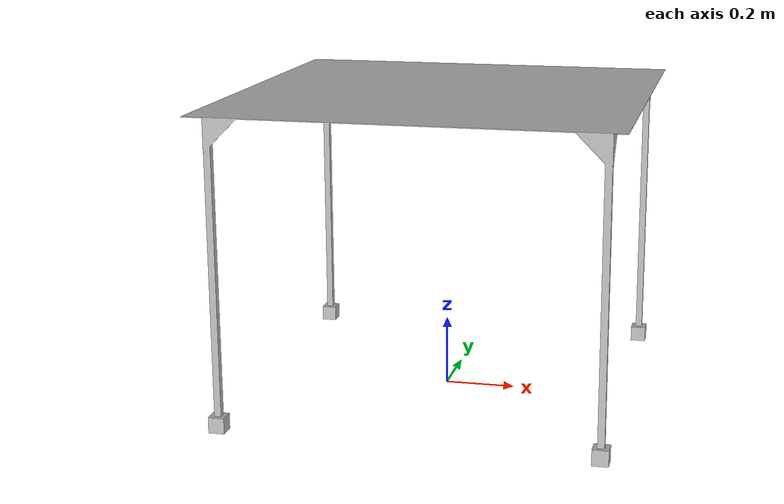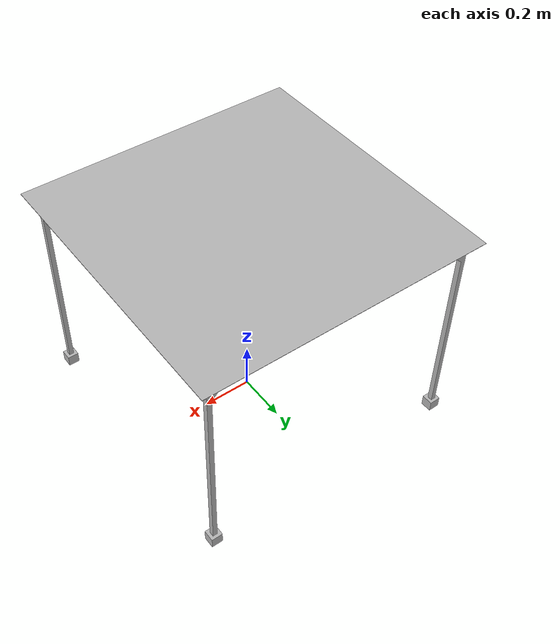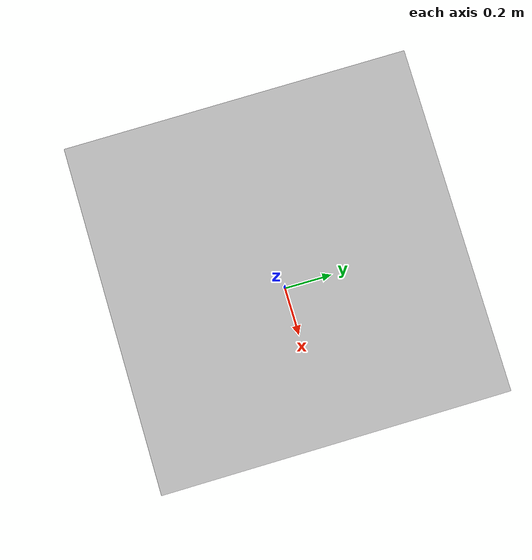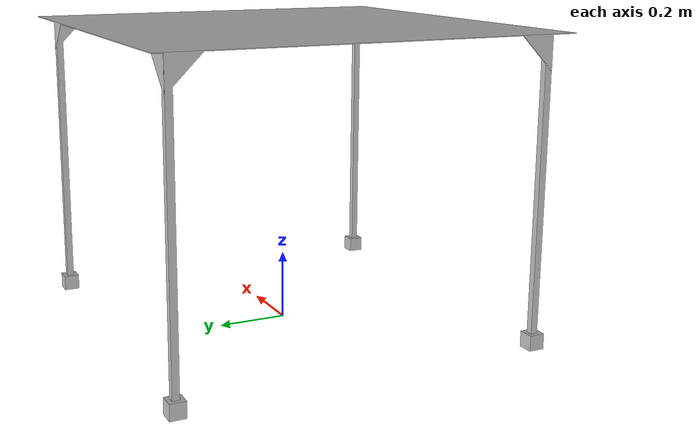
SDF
<?xml version="1.0" ?>
<sdf version="1.4">
  <model name="launch_pad">
    <static>true</static>
    <link name="link">

      <collision name="base">
        <pose>0 0 0.88 0 0 0</pose>
        <geometry>
          <box>
            <size>1.2 1.2 0.02</size>
          </box>
        </geometry>
      </collision>

      <collision name="leg1">
        <pose>0.52 0.52 0.44 0 0 0</pose>
        <geometry>
          <box>
            <size>0.05 0.05 0.88</size>
          </box>
        </geometry>
      </collision>

      <collision name="leg2">
        <pose>-0.52 0.52 0.44 0 0 0</pose>
        <geometry>
          <box>
            <size>0.05 0.05 0.88</size>
          </box>
        </geometry>
      </collision>

      <collision name="leg3">
        <pose>0.52 -0.52 0.44 0 0 0</pose>
        <geometry>
          <box>
            <size>0.05 0.05 0.88</size>
          </box>
        </geometry>
      </collision>

      <collision name="leg4">
        <pose>-0.52 -0.52 0.44 0 0 0</pose>
        <geometry>
          <box>
            <size>0.05 0.05 0.88</size>
          </box>
        </geometry>
      </collision>

      <visual name="visual">
        <geometry>
          <mesh>
            <uri>model://launch_pad/meshes/drone_stand.dae</uri>
          </mesh>
        </geometry>
      </visual>
    </link>
  </model>
</sdf>
